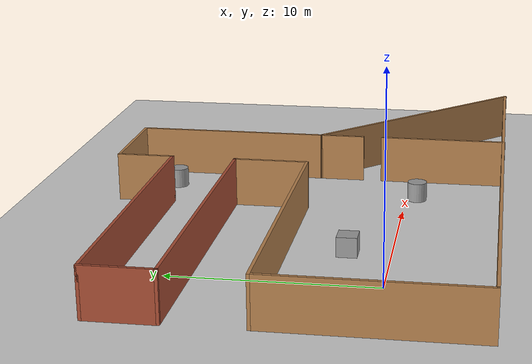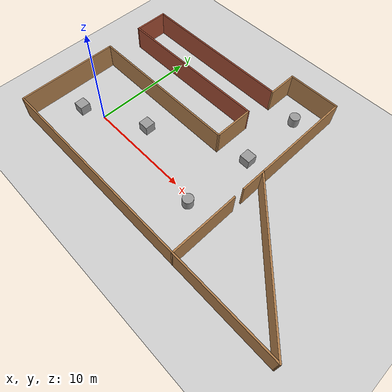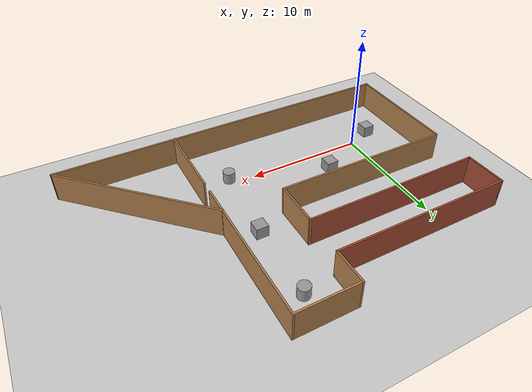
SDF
<sdf version="1.7">
 <world name="default">
  <light name="sun" type="directional">
   <pose>0 0 10 0 -0 0</pose>
   <diffuse>0.8 0.8 0.8 1</diffuse>
   <specular>0.2 0.2 0.2 1</specular>
   <attenuation>
    <range>1000</range>
    <constant>0.9</constant>
    <linear>0.01</linear>
    <quadratic>0.001</quadratic>
   </attenuation>
   <direction>-0.5 0.1 -0.9</direction>
   <spot><inner_angle>0</inner_angle><outer_angle>0</outer_angle><falloff>0</falloff></spot>
  </light>
  <model name="ground_plane">
   <static>1</static>
   <link name="link">
    <collision name="collision">
     <geometry><plane><normal>0 0 1</normal><size>100 100</size></plane></geometry>
     <surface>
      <contact><collide_bitmask>65535</collide_bitmask></contact>
      <friction><ode><mu>100</mu><mu2>50</mu2></ode></friction>
     </surface>
    </collision>
    <visual name="visual">
     <cast_shadows>0</cast_shadows>
     <geometry><plane><normal>0 0 1</normal><size>100 100</size></plane></geometry>
     <material>
      <script><uri>file://media/materials/scripts/gazebo.material</uri><name>Gazebo/Grey</name></script>
     </material>
    </visual>
   </link>
  </model>
  <gravity>0 0 -9.8</gravity>
  <magnetic_field>6e-06 2.3e-05 -4.2e-05</magnetic_field>
  <atmosphere type="adiabatic"/>
  <physics type="ode">
   <max_step_size>0.001</max_step_size>
   <real_time_factor>1</real_time_factor>
   <real_time_update_rate>1000</real_time_update_rate>
  </physics>
  <scene><ambient>0.4 0.4 0.4 1</ambient><background>0.7 0.7 0.7 1</background><shadows>1</shadows></scene>
  <spherical_coordinates>
   <surface_model>EARTH_WGS84</surface_model>
   <latitude_deg>0</latitude_deg>
   <longitude_deg>0</longitude_deg>
   <elevation>0</elevation>
   <heading_deg>0</heading_deg>
  </spherical_coordinates>
  <model name="xtark_gazebo">
   <pose>9.98391 4.98447 0 0 -0 0</pose>
   <link name="Wall_10">
    <collision name="Wall_10_Collision">
     <geometry><box><size>14.2921 0.15 2.5</size></box></geometry>
     <pose>0 0 1.25 0 -0 0</pose>
    </collision>
    <visual name="Wall_10_Visual">
     <pose>0 0 1.25 0 -0 0</pose>
     <geometry><box><size>14.2921 0.15 2.5</size></box></geometry>
     <material>
      <script><uri>file://media/materials/scripts/gazebo.material</uri><name>Gazebo/Wood</name></script>
      <ambient>0.996078 0.47451 0.0196078 1</ambient>
     </material>
     <meta><layer>0</layer></meta>
    </visual>
    <pose>10.0161 -4.98447 0 0 -0 2.35619</pose>
   </link>
   <link name="Wall_16">
    <collision name="Wall_16_Collision">
     <geometry><box><size>2.457 0.15 2.5</size></box></geometry>
     <pose>0 0 1.25 0 -0 0</pose>
    </collision>
    <visual name="Wall_16_Visual">
     <pose>0 0 1.25 0 -0 0</pose>
     <geometry><box><size>2.457 0.15 2.5</size></box></geometry>
     <material>
      <script><uri>file://media/materials/scripts/gazebo.material</uri><name>Gazebo/Wood</name></script>
      <ambient>1 1 1 1</ambient>
     </material>
     <meta><layer>0</layer></meta>
    </visual>
    <pose>5.01609 -1.13797 0 0 -0 1.5708</pose>
   </link>
   <link name="Wall_18">
    <collision name="Wall_18_Collision">
     <geometry><box><size>6.75 0.15 2.5</size></box></geometry>
     <pose>0 0 1.25 0 -0 0</pose>
    </collision>
    <visual name="Wall_18_Visual">
     <pose>0 0 1.25 0 -0 0</pose>
     <geometry><box><size>6.75 0.15 2.5</size></box></geometry>
     <material>
      <script><uri>file://media/materials/scripts/gazebo.material</uri><name>Gazebo/Wood</name></script>
      <ambient>0.996078 0.47451 0.0196078 1</ambient>
     </material>
     <meta><layer>0</layer></meta>
    </visual>
    <pose>5.01609 -6.71147 0 0 -0 -1.5708</pose>
   </link>
   <link name="Wall_20">
    <collision name="Wall_20_Collision">
     <geometry><box><size>3.94819 0.15 2.5</size></box></geometry>
     <pose>0 0 1.25 0 -0 0</pose>
    </collision>
    <visual name="Wall_20_Visual">
     <pose>0 0 1.25 0 -0 0</pose>
     <geometry><box><size>3.94819 0.15 2.5</size></box></geometry>
     <material>
      <script><uri>file://media/materials/scripts/gazebo.material</uri><name>Gazebo/Wood</name></script>
      <ambient>0.760784 0.662745 0.627451 1</ambient>
     </material>
     <meta><layer>0</layer></meta>
    </visual>
    <pose>0.016087 1.91453 0 0 -0 -1.5708</pose>
   </link>
   <link name="Wall_22">
    <collision name="Wall_22_Collision">
     <geometry><box><size>15.2135 0.15 2.5</size></box></geometry>
     <pose>0 0 1.25 0 -0 0</pose>
    </collision>
    <visual name="Wall_22_Visual">
     <pose>0 0 1.25 0 -0 0</pose>
     <geometry><box><size>15.2135 0.15 2.5</size></box></geometry>
     <material>
      <script><uri>file://media/materials/scripts/gazebo.material</uri><name>Gazebo/Bricks</name></script>
      <ambient>0.760784 0.662745 0.627451 1</ambient>
     </material>
     <meta><layer>0</layer></meta>
    </visual>
    <pose>-7.51541 3.81353 0 0 -0 3.14159</pose>
   </link>
   <link name="Wall_23">
    <collision name="Wall_23_Collision">
     <geometry><box><size>3.5 0.15 2.5</size></box></geometry>
     <pose>0 0 1.25 0 -0 0</pose>
    </collision>
    <visual name="Wall_23_Visual">
     <pose>0 0 1.25 0 -0 0</pose>
     <geometry><box><size>3.5 0.15 2.5</size></box></geometry>
     <material>
      <script><uri>file://media/materials/scripts/gazebo.material</uri><name>Gazebo/Bricks</name></script>
      <ambient>0.760784 0.662745 0.627451 1</ambient>
     </material>
     <meta><layer>0</layer></meta>
    </visual>
    <pose>-15.0469 5.48853 0 0 -0 1.5708</pose>
   </link>
   <link name="Wall_24">
    <collision name="Wall_24_Collision">
     <geometry><box><size>15.213 0.15 2.5</size></box></geometry>
     <pose>0 0 1.25 0 -0 0</pose>
    </collision>
    <visual name="Wall_24_Visual">
     <pose>0 0 1.25 0 -0 0</pose>
     <geometry><box><size>15.213 0.15 2.5</size></box></geometry>
     <material>
      <script><uri>file://media/materials/scripts/gazebo.material</uri><name>Gazebo/Bricks</name></script>
      <ambient>0.760784 0.662745 0.627451 1</ambient>
     </material>
     <meta><layer>0</layer></meta>
    </visual>
    <pose>-7.51541 7.16353 0 0 -0 0</pose>
   </link>
   <link name="Wall_25">
    <collision name="Wall_25_Collision">
     <geometry><box><size>3.002 0.15 2.5</size></box></geometry>
     <pose>0 0 1.25 0 -0 0</pose>
    </collision>
    <visual name="Wall_25_Visual">
     <pose>0 0 1.25 0 -0 0</pose>
     <geometry><box><size>3.002 0.15 2.5</size></box></geometry>
     <material>
      <script><uri>file://media/materials/scripts/gazebo.material</uri><name>Gazebo/Wood</name></script>
      <ambient>0.760784 0.662745 0.627451 1</ambient>
     </material>
     <meta><layer>0</layer></meta>
    </visual>
    <pose>0.016087 8.58953 0 0 -0 1.5708</pose>
   </link>
   <link name="Wall_26">
    <collision name="Wall_26_Collision">
     <geometry><box><size>5.15 0.15 2.5</size></box></geometry>
     <pose>0 0 1.25 0 -0 0</pose>
    </collision>
    <visual name="Wall_26_Visual">
     <pose>0 0 1.25 0 -0 0</pose>
     <geometry><box><size>5.15 0.15 2.5</size></box></geometry>
     <material>
      <script><uri>file://media/materials/scripts/gazebo.material</uri><name>Gazebo/Wood</name></script>
      <ambient>0.760784 0.662745 0.627451 1</ambient>
     </material>
     <meta><layer>0</layer></meta>
    </visual>
    <pose>2.51609 10.0155 0 0 -0 0</pose>
   </link>
   <link name="Wall_27">
    <collision name="Wall_27_Collision">
     <geometry><box><size>10.15 0.15 2.5</size></box></geometry>
     <pose>0 0 1.25 0 -0 0</pose>
    </collision>
    <visual name="Wall_27_Visual">
     <pose>0 0 1.25 0 -0 0</pose>
     <geometry><box><size>10.15 0.15 2.5</size></box></geometry>
     <material>
      <script><uri>file://media/materials/scripts/gazebo.material</uri><name>Gazebo/Wood</name></script>
      <ambient>0.760784 0.662745 0.627451 1</ambient>
     </material>
     <meta><layer>0</layer></meta>
    </visual>
    <pose>5.01609 5.01553 0 0 -0 -1.5708</pose>
   </link>
   <link name="Wall_5">
    <collision name="Wall_5_Collision">
     <geometry><box><size>30.15 0.15 2.5</size></box></geometry>
     <pose>0 0 1.25 0 -0 0</pose>
    </collision>
    <visual name="Wall_5_Visual">
     <pose>0 0 1.25 0 -0 0</pose>
     <geometry><box><size>30.15 0.15 2.5</size></box></geometry>
     <material>
      <script><uri>file://media/materials/scripts/gazebo.material</uri><name>Gazebo/Wood</name></script>
      <ambient>0.996078 0.47451 0.0196078 1</ambient>
     </material>
     <meta><layer>0</layer></meta>
    </visual>
    <pose>0.016087 -9.98447 0 0 -0 0</pose>
   </link>
   <link name="Wall_7">
    <collision name="Wall_7_Collision">
     <geometry><box><size>15.15 0.15 2.5</size></box></geometry>
     <pose>0 0 1.25 0 -0 0</pose>
    </collision>
    <visual name="Wall_7_Visual">
     <pose>0 0 1.25 0 -0 0</pose>
     <geometry><box><size>15.15 0.15 2.5</size></box></geometry>
     <material>
      <script><uri>file://media/materials/scripts/gazebo.material</uri><name>Gazebo/Wood</name></script>
      <ambient>0.996078 0.47451 0.0196078 1</ambient>
     </material>
     <meta><layer>0</layer></meta>
    </visual>
    <pose>-7.48391 0.015533 0 0 -0 3.14159</pose>
   </link>
   <link name="Wall_8">
    <collision name="Wall_8_Collision">
     <geometry><box><size>10.15 0.15 2.5</size></box></geometry>
     <pose>0 0 1.25 0 -0 0</pose>
    </collision>
    <visual name="Wall_8_Visual">
     <pose>0 0 1.25 0 -0 0</pose>
     <geometry><box><size>10.15 0.15 2.5</size></box></geometry>
     <material>
      <script><uri>file://media/materials/scripts/gazebo.material</uri><name>Gazebo/Wood</name></script>
      <ambient>0.996078 0.47451 0.0196078 1</ambient>
     </material>
     <meta><layer>0</layer></meta>
    </visual>
    <pose>-14.9839 -4.98447 0 0 -0 -1.5708</pose>
   </link>
   <static>1</static>
  </model>
  <model name="unit_box">
   <pose>3.84303 2.07772 0.499995 0 1e-05 0</pose>
   <link name="link">
    <inertial>
     <mass>1</mass>
     <inertia>
      <ixx>0.166667</ixx>
      <ixy>0</ixy>
      <ixz>0</ixz>
      <iyy>0.166667</iyy>
      <iyz>0</iyz>
      <izz>0.166667</izz>
     </inertia>
    </inertial>
    <collision name="collision"><geometry><box><size>1 1 1</size></box></geometry></collision>
    <visual name="visual">
     <geometry><box><size>1 1 1</size></box></geometry>
     <material>
      <script><name>Gazebo/Grey</name><uri>file://media/materials/scripts/gazebo.material</uri></script>
     </material>
    </visual>
   </link>
  </model>
  <model name="unit_box_0">
   <pose>12.6348 6.12957 0.499995 -1e-05 -0 -0</pose>
   <link name="link">
    <inertial>
     <mass>1</mass>
     <inertia>
      <ixx>0.166667</ixx>
      <ixy>0</ixy>
      <ixz>0</ixz>
      <iyy>0.166667</iyy>
      <iyz>0</iyz>
      <izz>0.166667</izz>
     </inertia>
    </inertial>
    <collision name="collision"><geometry><box><size>1 1 1</size></box></geometry></collision>
    <visual name="visual">
     <geometry><box><size>1 1 1</size></box></geometry>
     <material>
      <script><name>Gazebo/Grey</name><uri>file://media/materials/scripts/gazebo.material</uri></script>
     </material>
    </visual>
   </link>
  </model>
  <model name="unit_cylinder">
   <pose>12.6913 12.5384 0.499997 3e-06 4e-06 -0</pose>
   <link name="link">
    <inertial>
     <mass>1</mass>
     <inertia><ixx>0.145833</ixx><ixy>0</ixy><ixz>0</ixz><iyy>0.145833</iyy><iyz>0</iyz><izz>0.125</izz></inertia>
    </inertial>
    <collision name="collision">
     <geometry><cylinder><radius>0.5</radius><length>1</length></cylinder></geometry>
    </collision>
    <visual name="visual">
     <geometry><cylinder><radius>0.5</radius><length>1</length></cylinder></geometry>
     <material>
      <script><name>Gazebo/Grey</name><uri>file://media/materials/scripts/gazebo.material</uri></script>
     </material>
    </visual>
   </link>
  </model>
  <model name="unit_box_1">
   <pose>-2.09891 -0.865771 0.499995 -1e-05 -0 0</pose>
   <link name="link">
    <inertial>
     <mass>1</mass>
     <inertia>
      <ixx>0.166667</ixx>
      <ixy>0</ixy>
      <ixz>0</ixz>
      <iyy>0.166667</iyy>
      <iyz>0</iyz>
      <izz>0.166667</izz>
     </inertia>
    </inertial>
    <collision name="collision"><geometry><box><size>1 1 1</size></box></geometry></collision>
    <visual name="visual">
     <geometry><box><size>1 1 1</size></box></geometry>
     <material>
      <script><name>Gazebo/Grey</name><uri>file://media/materials/scripts/gazebo.material</uri></script>
     </material>
    </visual>
   </link>
  </model>
  <model name="unit_cylinder_0">
   <pose>12.0527 -0.580328 0.499997 3e-06 4e-06 -0</pose>
   <link name="link">
    <inertial>
     <mass>1</mass>
     <inertia><ixx>0.145833</ixx><ixy>0</ixy><ixz>0</ixz><iyy>0.145833</iyy><iyz>0</iyz><izz>0.125</izz></inertia>
    </inertial>
    <collision name="collision">
     <geometry><cylinder><radius>0.5</radius><length>1</length></cylinder></geometry>
    </collision>
    <visual name="visual">
     <geometry><cylinder><radius>0.5</radius><length>1</length></cylinder></geometry>
     <material>
      <script><name>Gazebo/Grey</name><uri>file://media/materials/scripts/gazebo.material</uri></script>
     </material>
    </visual>
   </link>
  </model>
  <light name="user_point_light_0" type="point">
   <pose>10.7329 4.47517 1 0 -0 0</pose>
   <diffuse>0.5 0.5 0.5 1</diffuse>
   <specular>0.1 0.1 0.1 1</specular>
   <attenuation>
    <range>20</range>
    <constant>0.5</constant>
    <linear>0.01</linear>
    <quadratic>0.001</quadratic>
   </attenuation>
   <cast_shadows>0</cast_shadows>
   <direction>0 0 -1</direction>
  </light>
  <light name="user_point_light_1" type="point">
   <pose>1.10872 -1.35251 1 0 -0 0</pose>
   <diffuse>0.5 0.5 0.5 1</diffuse>
   <specular>0.1 0.1 0.1 1</specular>
   <attenuation>
    <range>20</range>
    <constant>0.5</constant>
    <linear>0.01</linear>
    <quadratic>0.001</quadratic>
   </attenuation>
   <cast_shadows>0</cast_shadows>
   <direction>0 0 -1</direction>
  </light>
  <light name="user_point_light_2" type="point">
   <pose>13.3959 10.0869 1 0 -0 0</pose>
   <diffuse>0.5 0.5 0.5 1</diffuse>
   <specular>0.1 0.1 0.1 1</specular>
   <attenuation>
    <range>20</range>
    <constant>0.5</constant>
    <linear>0.01</linear>
    <quadratic>0.001</quadratic>
   </attenuation>
   <cast_shadows>0</cast_shadows>
   <direction>0 0 -1</direction>
  </light>
  <light name="user_point_light_3" type="point">
   <pose>18.3663 -1.02997 1 0 -0 0</pose>
   <diffuse>0.5 0.5 0.5 1</diffuse>
   <specular>0.1 0.1 0.1 1</specular>
   <attenuation>
    <range>20</range>
    <constant>0.5</constant>
    <linear>0.01</linear>
    <quadratic>0.001</quadratic>
   </attenuation>
   <cast_shadows>0</cast_shadows>
   <direction>0 0 -1</direction>
  </light>
  <light name="user_point_light_4" type="point">
   <pose>1.31592 12.0235 1 0 -0 0</pose>
   <diffuse>0.5 0.5 0.5 1</diffuse>
   <specular>0.1 0.1 0.1 1</specular>
   <attenuation>
    <range>20</range>
    <constant>0.5</constant>
    <linear>0.01</linear>
    <quadratic>0.001</quadratic>
   </attenuation>
   <cast_shadows>0</cast_shadows>
   <direction>0 0 -1</direction>
  </light>
 </world>
</sdf>
